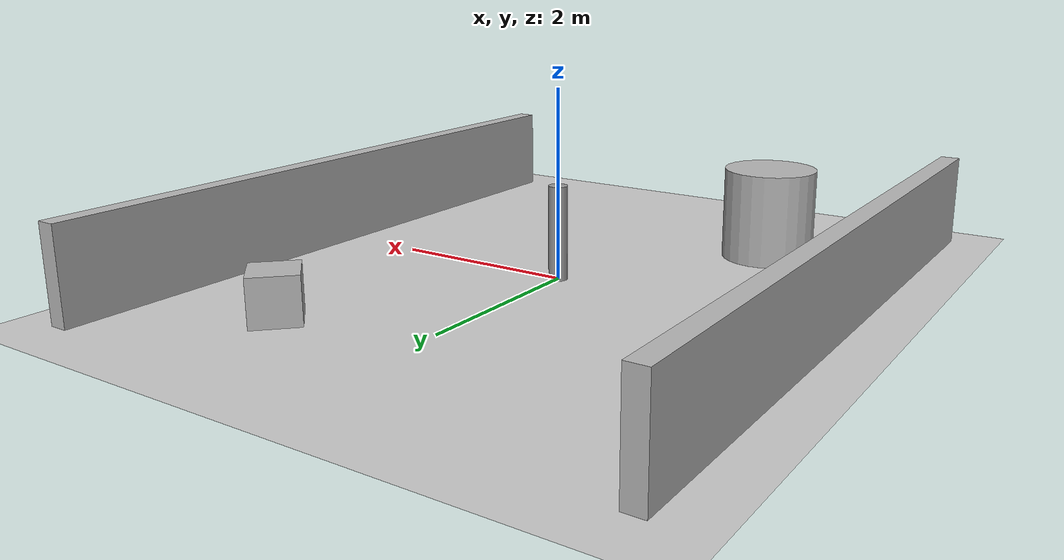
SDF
<?xml version="1.0" ?>
<sdf version="1.6">
  <world name="default">
    <include>
      <uri>model://ground_plane</uri>
    </include>
    <include>
      <uri>model://sun</uri>
    </include>

    <!-- Central Antenna -->
    <model name="central_antenna">
      <static>true</static>
      <pose>0 0 0.5 0 0 0</pose>
      <link name="link">
        <visual name="visual">
          <geometry>
            <cylinder>
              <radius>0.1</radius>
              <length>1.0</length>
            </cylinder>
          </geometry>
          <material>
            <script>
              <uri>file://media/materials/scripts/gazebo.material</uri>
              <name>Gazebo/Grey</name>
            </script>
          </material>
        </visual>
        <collision name="collision">
          <geometry>
            <cylinder>
              <radius>0.1</radius>
              <length>1.0</length>
            </cylinder>
          </geometry>
        </collision>
      </link>
    </model>

    <!-- SLAM Obstacles -->
    <model name="wall_1">
      <static>true</static>
      <pose>3 0 0.5 0 0 1.5707</pose>
      <link name="link">
        <collision name="collision">
          <geometry><box><size>7.5 0.2 1</size></box></geometry>
        </collision>
        <visual name="visual">
          <geometry><box><size>7.5 0.2 1</size></box></geometry>
        </visual>
      </link>
    </model>

    <model name="wall_2">
      <static>true</static>
      <pose>-3 0 0.5 0 0 1.5707</pose>
      <link name="link">
        <collision name="collision">
          <geometry><box><size>7.5 0.2 1</size></box></geometry>
        </collision>
        <visual name="visual">
          <geometry><box><size>7.5 0.2 1</size></box></geometry>
        </visual>
      </link>
    </model>

    <model name="box_obstacle_1">
      <static>true</static>
      <pose>1.5 2.5 0.25 0 0 0.785</pose>
      <link name="link">
        <collision name="collision">
          <geometry><box><size>0.5 0.5 0.5</size></box></geometry>
        </collision>
        <visual name="visual">
          <geometry><box><size>0.5 0.5 0.5</size></box></geometry>
        </visual>
      </link>
    </model>

    <model name="cylinder_obstacle_1">
      <static>true</static>
      <pose>-1.5 -2.0 0.5 0 0 0</pose>
      <link name="link">
        <collision name="collision">
          <geometry><cylinder><radius>0.5</radius><length>1.0</length></cylinder></geometry>
        </collision>
        <visual name="visual">
          <geometry><cylinder><radius>0.5</radius><length>1.0</length></cylinder></geometry>
        </visual>
      </link>
    </model>

  </world>
</sdf>
